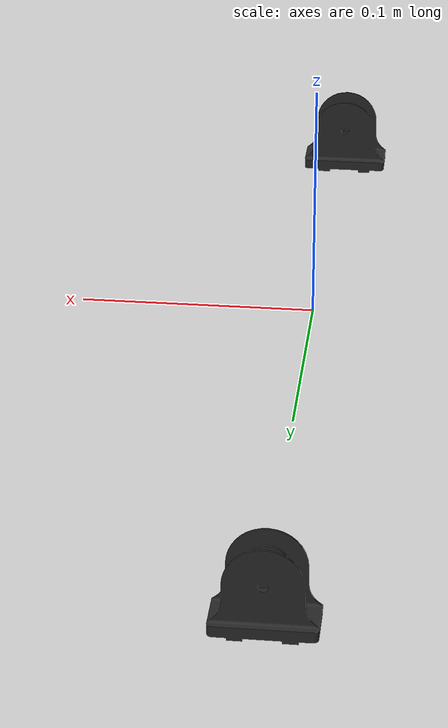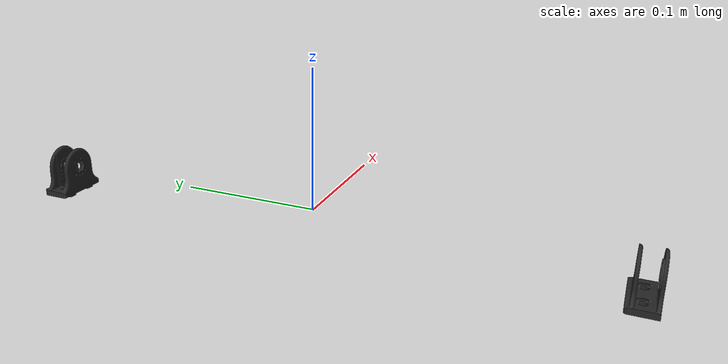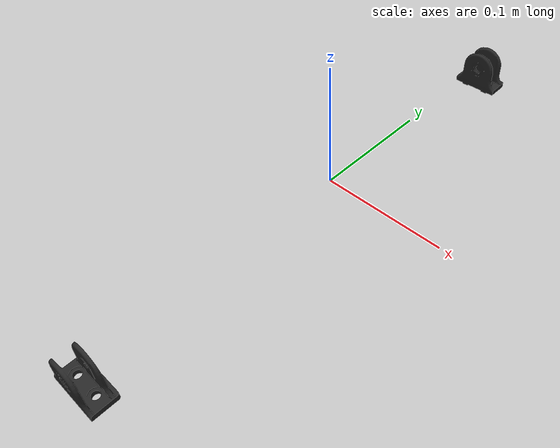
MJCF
<mujoco model="monitor_hinge_base">
  <default>
    <default class="visual">
      <geom group="2" type="mesh" contype="0" conaffinity="0"/>
    </default>
    <default class="collision">
      <geom group="3" type="mesh"/>
    </default>
  </default>
  <asset>
    <material name="mtl_monitor_hinge_base" specular="0.20000000000000004" shininess="1.0" rgba="0.14901961 0.14901961 0.14901961 1.0"/>
    <mesh file="monitor_hinge_base.obj"/>
  </asset>
  <worldbody>
    <body name="monitor_hinge_base">
      <geom material="mtl_monitor_hinge_base" mesh="monitor_hinge_base" class="visual"/>
      <geom mesh="monitor_hinge_base" class="collision"/>
    </body>
  </worldbody>
</mujoco>
